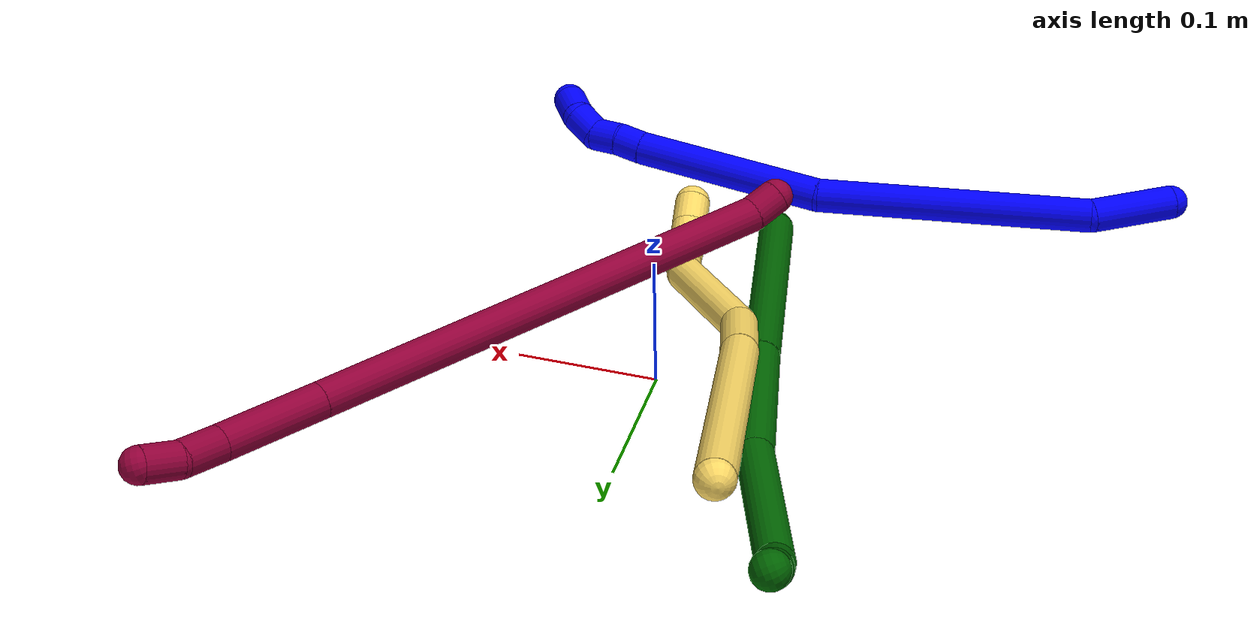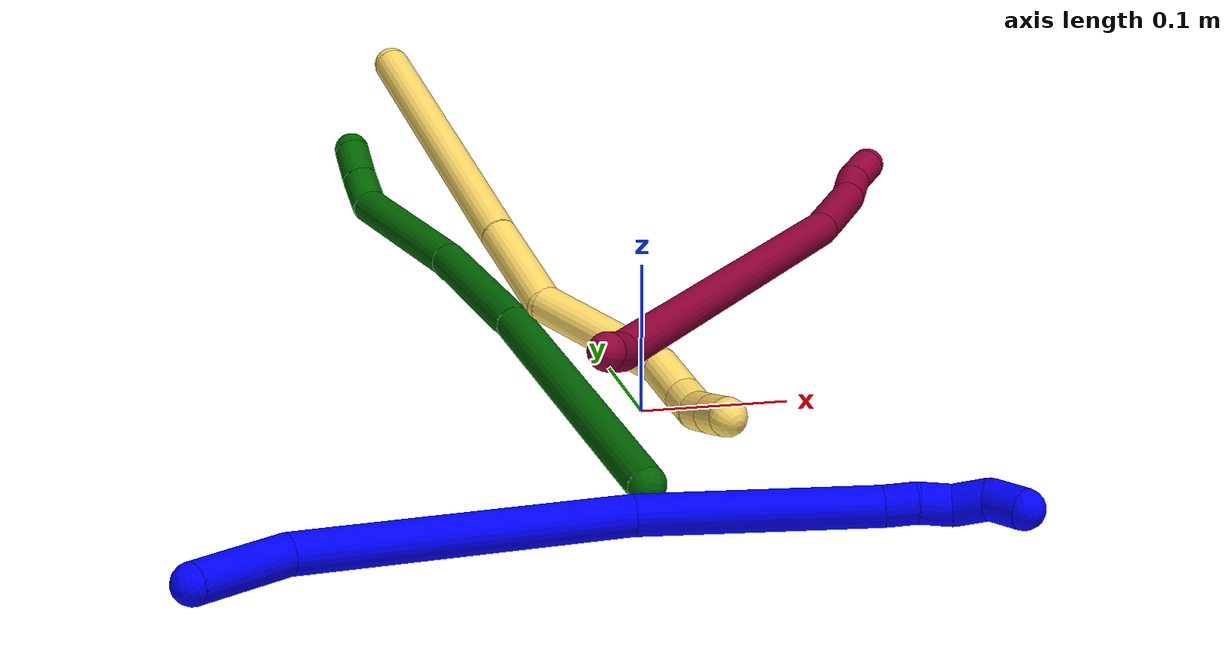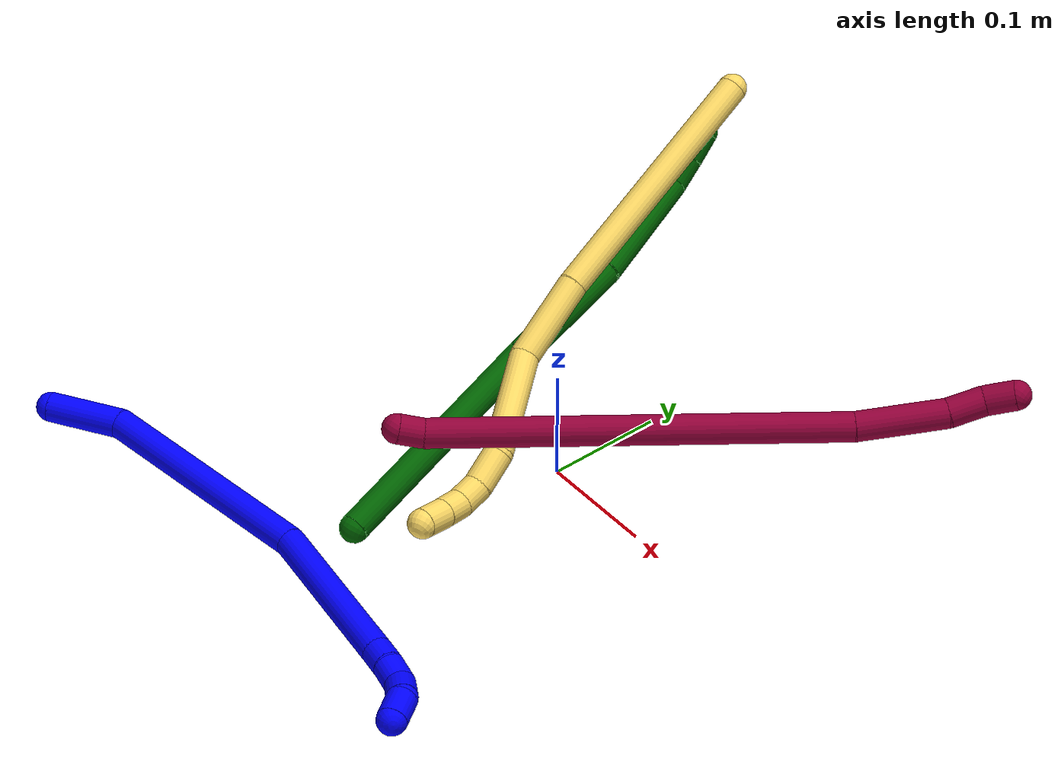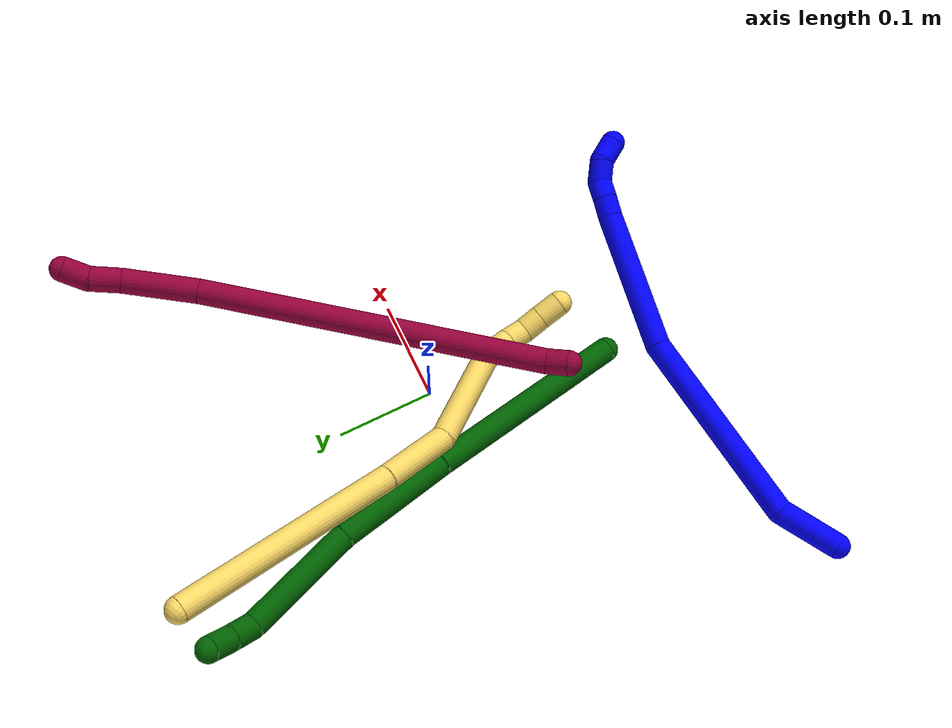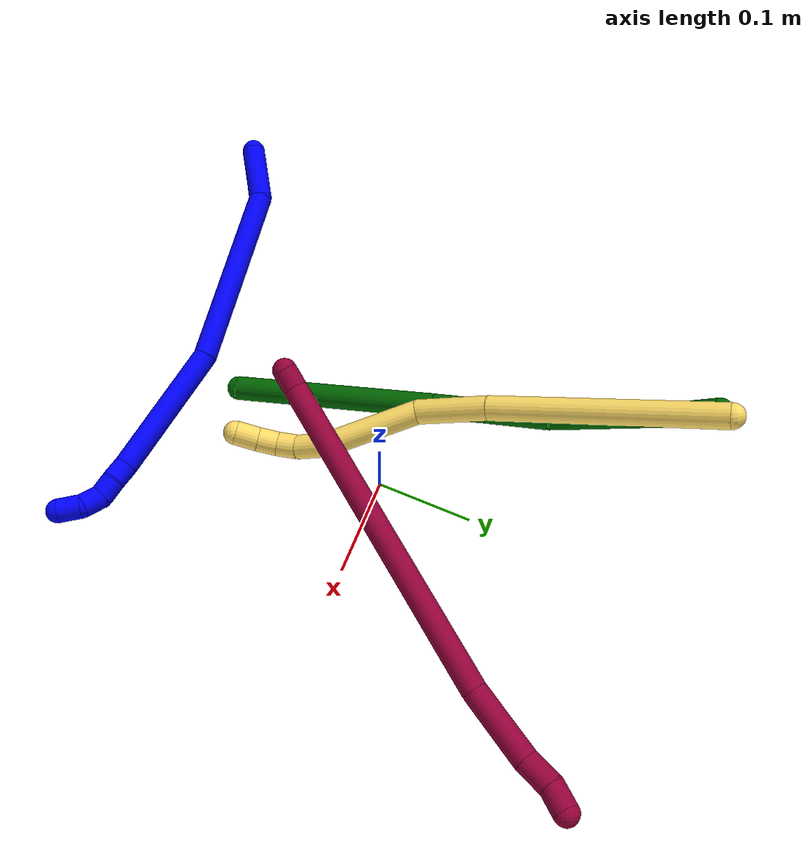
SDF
<sdf version="1.7">
 <world name="default">
  <model name="photoneo_s_sensor">
   <static>1</static>
   <pose>0 0 2 1.57079 1.57079 3.14159</pose>
   <link name="link">
    <inertial><mass>0.1</mass></inertial>
    <sensor name="sensor" type="depth">
     <update_rate>30</update_rate>
     <camera>
      <horizontal_fov>1.22</horizontal_fov>
      <image><width>1920</width><height>1200</height><format>B8G8R8</format></image>
      <clip><near>0.1</near><far>4</far></clip>
      <depth_camera><output>points</output></depth_camera>
     </camera>
     <plugin name="camera_plugin" filename="libgazebo_ros_depth_camera.so">
      <baseline>0.2</baseline>
      <alwaysOn>1</alwaysOn>
      <updateRate>0.0</updateRate>
      <cameraName>camera_ir</cameraName>
      <imageTopicName>/camera/color/image_raw</imageTopicName>
      <cameraInfoTopicName>/camera/color/camera_info</cameraInfoTopicName>
      <depthImageTopicName>/camera/depth/image_raw</depthImageTopicName>
      <depthImageCameraInfoTopicName>/camera/depth/camera_info</depthImageCameraInfoTopicName>
      <pointCloudTopicName>/camera/depth/points</pointCloudTopicName>
      <frameName>fr_optical</frameName>
      <pointCloudCutoff>0.1</pointCloudCutoff>
      <pointCloudCutoffMax>2.0</pointCloudCutoffMax>
      <distortionK1>0</distortionK1>
      <distortionK2>0</distortionK2>
      <distortionK3>0</distortionK3>
      <distortionT1>0</distortionT1>
      <distortionT2>0</distortionT2>
      <CxPrime>0</CxPrime>
      <Cx>0</Cx>
      <Cy>0</Cy>
      <focalLength>0</focalLength>
      <hackBaseline>0</hackBaseline>
     </plugin>
    </sensor>
   </link>
  </model>
  <model name="bin">
   <static>1</static>
   <link name="bottom">
    <collision name="collision-bottom">
     <pose>0 0 -0.01 0 -0 0</pose>
     <geometry><box><size>0.8 0.6 0.02</size></box></geometry>
     <surface>
      <friction><ode><mu>100</mu><mu2>100</mu2></ode></friction>
      <contact><collide_bitmask>65535</collide_bitmask></contact>
     </surface>
    </collision>
   </link>
   <link name="west_wall">
    <collision name="collision-west_wall">
     <pose>-0.41 0 0.1 0 -0 0</pose>
     <geometry><box><size>0.02 0.6 0.2</size></box></geometry>
     <surface>
      <friction><ode><mu>100</mu><mu2>100</mu2></ode></friction>
      <contact><collide_bitmask>65535</collide_bitmask></contact>
     </surface>
    </collision>
   </link>
   <link name="east_wall">
    <collision name="collision-east_wall">
     <pose>0.41 0 0.1 0 -0 0</pose>
     <geometry><box><size>0.02 0.6 0.2</size></box></geometry>
     <surface>
      <friction><ode><mu>100</mu><mu2>100</mu2></ode></friction>
      <contact><collide_bitmask>65535</collide_bitmask></contact>
     </surface>
    </collision>
   </link>
   <link name="south_wall">
    <collision name="collision-south_wall">
     <pose>0 -0.31 0.1 0 -0 0</pose>
     <geometry><box><size>0.8 0.02 0.2</size></box></geometry>
     <surface>
      <friction><ode><mu>100</mu><mu2>100</mu2></ode></friction>
      <contact><collide_bitmask>65535</collide_bitmask></contact>
     </surface>
    </collision>
   </link>
   <link name="north_wall">
    <collision name="collision-north_wall">
     <pose>0 0.31 0.1 0 -0 0</pose>
     <geometry><box><size>0.8 0.02 0.2</size></box></geometry>
     <surface>
      <friction><ode><mu>100</mu><mu2>100</mu2></ode></friction>
      <contact><collide_bitmask>65535</collide_bitmask></contact>
     </surface>
    </collision>
   </link>
  </model>
  <model name="1">
   <static>0</static>
   <link name="1">
    <collision name="collision-cylinder-e_1_1_4">
     <pose>0.028662 -0.004553 -0.013015 2.80507 1.1224 2.61375</pose>
     <geometry><cylinder><radius>0.0125</radius><length>0.063613</length></cylinder></geometry>
     <surface>
      <friction><ode><mu>1.16</mu><mu2>1.16</mu2><slip1>0</slip1><slip2>0</slip2></ode></friction>
      <contact><ode><kp>1e+06</kp><kd>1</kd><max_vel>0</max_vel><min_depth>0.001</min_depth></ode></contact>
     </surface>
    </collision>
    <visual name="visual-cylinder-e_1_1_4">
     <pose>0.028662 -0.004553 -0.013015 2.80507 1.1224 2.61375</pose>
     <geometry><cylinder><radius>0.0125</radius><length>0.063613</length></cylinder></geometry>
     <material><ambient>0 0 1 1</ambient></material>
    </visual>
    <collision name="collision-cylinder-e_2_4_5">
     <pose>0.129143 -0.000375 -0.097504 -3.02004 0.784103 -2.84933</pose>
     <geometry><cylinder><radius>0.0125</radius><length>0.203397</length></cylinder></geometry>
     <surface>
      <friction><ode><mu>1.16</mu><mu2>1.16</mu2><slip1>0</slip1><slip2>0</slip2></ode></friction>
      <contact><ode><kp>1e+06</kp><kd>1</kd><max_vel>0</max_vel><min_depth>0.001</min_depth></ode></contact>
     </surface>
    </collision>
    <visual name="visual-cylinder-e_2_4_5">
     <pose>0.129143 -0.000375 -0.097504 -3.02004 0.784103 -2.84933</pose>
     <geometry><cylinder><radius>0.0125</radius><length>0.203397</length></cylinder></geometry>
     <material><ambient>0 0 1 1</ambient></material>
    </visual>
    <collision name="collision-cylinder-e_3_5_6">
     <pose>0.237179 0.023201 -0.230351 -2.90427 0.520765 -2.30009</pose>
     <geometry><cylinder><radius>0.0125</radius><length>0.145585</length></cylinder></geometry>
     <surface>
      <friction><ode><mu>1.16</mu><mu2>1.16</mu2><slip1>0</slip1><slip2>0</slip2></ode></friction>
      <contact><ode><kp>1e+06</kp><kd>1</kd><max_vel>0</max_vel><min_depth>0.001</min_depth></ode></contact>
     </surface>
    </collision>
    <visual name="visual-cylinder-e_3_5_6">
     <pose>0.237179 0.023201 -0.230351 -2.90427 0.520765 -2.30009</pose>
     <geometry><cylinder><radius>0.0125</radius><length>0.145585</length></cylinder></geometry>
     <material><ambient>0 0 1 1</ambient></material>
    </visual>
    <collision name="collision-cylinder-e_4_6_7">
     <pose>0.277712 0.039629 -0.300668 -2.96639 0.44361 -2.39884</pose>
     <geometry><cylinder><radius>0.0125</radius><length>0.020112</length></cylinder></geometry>
     <surface>
      <friction><ode><mu>1.16</mu><mu2>1.16</mu2><slip1>0</slip1><slip2>0</slip2></ode></friction>
      <contact><ode><kp>1e+06</kp><kd>1</kd><max_vel>0</max_vel><min_depth>0.001</min_depth></ode></contact>
     </surface>
    </collision>
    <visual name="visual-cylinder-e_4_6_7">
     <pose>0.277712 0.039629 -0.300668 -2.96639 0.44361 -2.39884</pose>
     <geometry><cylinder><radius>0.0125</radius><length>0.020112</length></cylinder></geometry>
     <material><ambient>0 0 1 1</ambient></material>
    </visual>
    <collision name="collision-cylinder-e_5_7_8">
     <pose>0.287066 0.044408 -0.318202 -2.7854 0.502524 -1.91846</pose>
     <geometry><cylinder><radius>0.0125</radius><length>0.020918</length></cylinder></geometry>
     <surface>
      <friction><ode><mu>1.16</mu><mu2>1.16</mu2><slip1>0</slip1><slip2>0</slip2></ode></friction>
      <contact><ode><kp>1e+06</kp><kd>1</kd><max_vel>0</max_vel><min_depth>0.001</min_depth></ode></contact>
     </surface>
    </collision>
    <visual name="visual-cylinder-e_5_7_8">
     <pose>0.287066 0.044408 -0.318202 -2.7854 0.502524 -1.91846</pose>
     <geometry><cylinder><radius>0.0125</radius><length>0.020918</length></cylinder></geometry>
     <material><ambient>0 0 1 1</ambient></material>
    </visual>
    <collision name="collision-cylinder-e_6_8_9">
     <pose>0.292565 0.04904 -0.337888 -3.01295 0.041285 -0.620359</pose>
     <geometry><cylinder><radius>0.0125</radius><length>0.022394</length></cylinder></geometry>
     <surface>
      <friction><ode><mu>1.16</mu><mu2>1.16</mu2><slip1>0</slip1><slip2>0</slip2></ode></friction>
      <contact><ode><kp>1e+06</kp><kd>1</kd><max_vel>0</max_vel><min_depth>0.001</min_depth></ode></contact>
     </surface>
    </collision>
    <visual name="visual-cylinder-e_6_8_9">
     <pose>0.292565 0.04904 -0.337888 -3.01295 0.041285 -0.620359</pose>
     <geometry><cylinder><radius>0.0125</radius><length>0.022394</length></cylinder></geometry>
     <material><ambient>0 0 1 1</ambient></material>
    </visual>
    <collision name="collision-cylinder-e_7_9_2">
     <pose>0.290002 0.056523 -0.358885 -2.59327 -0.255106 0.855684</pose>
     <geometry><cylinder><radius>0.0125</radius><length>0.023981</length></cylinder></geometry>
     <surface>
      <friction><ode><mu>1.16</mu><mu2>1.16</mu2><slip1>0</slip1><slip2>0</slip2></ode></friction>
      <contact><ode><kp>1e+06</kp><kd>1</kd><max_vel>0</max_vel><min_depth>0.001</min_depth></ode></contact>
     </surface>
    </collision>
    <visual name="visual-cylinder-e_7_9_2">
     <pose>0.290002 0.056523 -0.358885 -2.59327 -0.255106 0.855684</pose>
     <geometry><cylinder><radius>0.0125</radius><length>0.023981</length></cylinder></geometry>
     <material><ambient>0 0 1 1</ambient></material>
    </visual>
    <collision name="collision-sphere-2">
     <pose>0.286976 0.062571 -0.368786 0 -0 0</pose>
     <geometry><sphere><radius>0.0125</radius></sphere></geometry>
     <surface>
      <friction><ode><mu>1.16</mu><mu2>1.16</mu2><slip1>0</slip1><slip2>0</slip2></ode></friction>
      <contact><ode><kp>1e+06</kp><kd>1</kd><max_vel>0</max_vel><min_depth>0.001</min_depth></ode></contact>
     </surface>
    </collision>
    <visual name="visual-sphere-2">
     <pose>0.286976 0.062571 -0.368786 0 -0 0</pose>
     <geometry><sphere><radius>0.0125</radius></sphere></geometry>
     <material><ambient>0 0 1 1</ambient></material>
    </visual>
    <collision name="collision-sphere-9">
     <pose>0.293027 0.050475 -0.348983 0 -0 0</pose>
     <geometry><sphere><radius>0.0125</radius></sphere></geometry>
     <surface>
      <friction><ode><mu>1.16</mu><mu2>1.16</mu2><slip1>0</slip1><slip2>0</slip2></ode></friction>
      <contact><ode><kp>1e+06</kp><kd>1</kd><max_vel>0</max_vel><min_depth>0.001</min_depth></ode></contact>
     </surface>
    </collision>
    <visual name="visual-sphere-9">
     <pose>0.293027 0.050475 -0.348983 0 -0 0</pose>
     <geometry><sphere><radius>0.0125</radius></sphere></geometry>
     <material><ambient>0 0 1 1</ambient></material>
    </visual>
    <collision name="collision-sphere-4">
     <pose>0.057324 -0.009106 -0.026031 0 -0 0</pose>
     <geometry><sphere><radius>0.0125</radius></sphere></geometry>
     <surface>
      <friction><ode><mu>1.16</mu><mu2>1.16</mu2><slip1>0</slip1><slip2>0</slip2></ode></friction>
      <contact><ode><kp>1e+06</kp><kd>1</kd><max_vel>0</max_vel><min_depth>0.001</min_depth></ode></contact>
     </surface>
    </collision>
    <visual name="visual-sphere-4">
     <pose>0.057324 -0.009106 -0.026031 0 -0 0</pose>
     <geometry><sphere><radius>0.0125</radius></sphere></geometry>
     <material><ambient>0 0 1 1</ambient></material>
    </visual>
    <collision name="collision-sphere-1">
     <geometry><sphere><radius>0.0125</radius></sphere></geometry>
     <surface>
      <friction><ode><mu>1.16</mu><mu2>1.16</mu2><slip1>0</slip1><slip2>0</slip2></ode></friction>
      <contact><ode><kp>1e+06</kp><kd>1</kd><max_vel>0</max_vel><min_depth>0.001</min_depth></ode></contact>
     </surface>
    </collision>
    <visual name="visual-sphere-1">
     <geometry><sphere><radius>0.0125</radius></sphere></geometry>
     <material><ambient>0 0 1 1</ambient></material>
    </visual>
    <collision name="collision-sphere-8">
     <pose>0.292103 0.047604 -0.326793 0 -0 0</pose>
     <geometry><sphere><radius>0.0125</radius></sphere></geometry>
     <surface>
      <friction><ode><mu>1.16</mu><mu2>1.16</mu2><slip1>0</slip1><slip2>0</slip2></ode></friction>
      <contact><ode><kp>1e+06</kp><kd>1</kd><max_vel>0</max_vel><min_depth>0.001</min_depth></ode></contact>
     </surface>
    </collision>
    <visual name="visual-sphere-8">
     <pose>0.292103 0.047604 -0.326793 0 -0 0</pose>
     <geometry><sphere><radius>0.0125</radius></sphere></geometry>
     <material><ambient>0 0 1 1</ambient></material>
    </visual>
    <collision name="collision-sphere-5">
     <pose>0.200961 0.008356 -0.168978 0 -0 0</pose>
     <geometry><sphere><radius>0.0125</radius></sphere></geometry>
     <surface>
      <friction><ode><mu>1.16</mu><mu2>1.16</mu2><slip1>0</slip1><slip2>0</slip2></ode></friction>
      <contact><ode><kp>1e+06</kp><kd>1</kd><max_vel>0</max_vel><min_depth>0.001</min_depth></ode></contact>
     </surface>
    </collision>
    <visual name="visual-sphere-5">
     <pose>0.200961 0.008356 -0.168978 0 -0 0</pose>
     <geometry><sphere><radius>0.0125</radius></sphere></geometry>
     <material><ambient>0 0 1 1</ambient></material>
    </visual>
    <collision name="collision-sphere-6">
     <pose>0.273396 0.038046 -0.291724 0 -0 0</pose>
     <geometry><sphere><radius>0.0125</radius></sphere></geometry>
     <surface>
      <friction><ode><mu>1.16</mu><mu2>1.16</mu2><slip1>0</slip1><slip2>0</slip2></ode></friction>
      <contact><ode><kp>1e+06</kp><kd>1</kd><max_vel>0</max_vel><min_depth>0.001</min_depth></ode></contact>
     </surface>
    </collision>
    <visual name="visual-sphere-6">
     <pose>0.273396 0.038046 -0.291724 0 -0 0</pose>
     <geometry><sphere><radius>0.0125</radius></sphere></geometry>
     <material><ambient>0 0 1 1</ambient></material>
    </visual>
    <collision name="collision-sphere-7">
     <pose>0.282028 0.041212 -0.309611 0 -0 0</pose>
     <geometry><sphere><radius>0.0125</radius></sphere></geometry>
     <surface>
      <friction><ode><mu>1.16</mu><mu2>1.16</mu2><slip1>0</slip1><slip2>0</slip2></ode></friction>
      <contact><ode><kp>1e+06</kp><kd>1</kd><max_vel>0</max_vel><min_depth>0.001</min_depth></ode></contact>
     </surface>
    </collision>
    <visual name="visual-sphere-7">
     <pose>0.282028 0.041212 -0.309611 0 -0 0</pose>
     <geometry><sphere><radius>0.0125</radius></sphere></geometry>
     <material><ambient>0 0 1 1</ambient></material>
    </visual>
    <inertial>
     <pose>0.175433 0.014383 -0.166144 0 -0 0</pose>
     <mass>0.5</mass>
     <inertia>
      <ixx>-0.000929</ixx>
      <ixy>0</ixy>
      <ixz>0</ixz>
      <iyy>0.000601</iyy>
      <iyz>0</iyz>
      <izz>-0.000796</izz>
     </inertia>
    </inertial>
   </link>
   <pose>-0.313235 -0.288502 0.014056 -2.0195 0.328402 0.867038</pose>
  </model>
  <model name="5">
   <static>0</static>
   <link name="5">
    <collision name="collision-cylinder-e_1_1_4">
     <pose>-0.016309 -0.020682 -0.110614 2.95675 -0.143928 -1.3221</pose>
     <geometry><cylinder><radius>0.0125</radius><length>0.227413</length></cylinder></geometry>
     <surface>
      <friction><ode><mu>1.16</mu><mu2>1.16</mu2><slip1>0</slip1><slip2>0</slip2></ode></friction>
      <contact><ode><kp>1e+06</kp><kd>1</kd><max_vel>0</max_vel><min_depth>0.001</min_depth></ode></contact>
     </surface>
    </collision>
    <visual name="visual-cylinder-e_1_1_4">
     <pose>-0.016309 -0.020682 -0.110614 2.95675 -0.143928 -1.3221</pose>
     <geometry><cylinder><radius>0.0125</radius><length>0.227413</length></cylinder></geometry>
     <material><ambient>1 0.858824 0.4 1</ambient></material>
    </visual>
    <collision name="collision-cylinder-e_2_4_5">
     <pose>-0.039858 -0.045415 -0.257905 3.03159 -0.193736 -2.11059</pose>
     <geometry><cylinder><radius>0.0125</radius><length>0.075207</length></cylinder></geometry>
     <surface>
      <friction><ode><mu>1.16</mu><mu2>1.16</mu2><slip1>0</slip1><slip2>0</slip2></ode></friction>
      <contact><ode><kp>1e+06</kp><kd>1</kd><max_vel>0</max_vel><min_depth>0.001</min_depth></ode></contact>
     </surface>
    </collision>
    <visual name="visual-cylinder-e_2_4_5">
     <pose>-0.039858 -0.045415 -0.257905 3.03159 -0.193736 -2.11059</pose>
     <geometry><cylinder><radius>0.0125</radius><length>0.075207</length></cylinder></geometry>
     <material><ambient>1 0.858824 0.4 1</ambient></material>
    </visual>
    <collision name="collision-cylinder-e_3_5_6">
     <pose>-0.044568 -0.03789 -0.342473 -2.90444 0.051287 -0.424115</pose>
     <geometry><cylinder><radius>0.0125</radius><length>0.09867</length></cylinder></geometry>
     <surface>
      <friction><ode><mu>1.16</mu><mu2>1.16</mu2><slip1>0</slip1><slip2>0</slip2></ode></friction>
      <contact><ode><kp>1e+06</kp><kd>1</kd><max_vel>0</max_vel><min_depth>0.001</min_depth></ode></contact>
     </surface>
    </collision>
    <visual name="visual-cylinder-e_3_5_6">
     <pose>-0.044568 -0.03789 -0.342473 -2.90444 0.051287 -0.424115</pose>
     <geometry><cylinder><radius>0.0125</radius><length>0.09867</length></cylinder></geometry>
     <material><ambient>1 0.858824 0.4 1</ambient></material>
    </visual>
    <collision name="collision-cylinder-e_4_6_7">
     <pose>-0.04437 -0.027417 -0.406237 3.07225 -0.145469 -2.25299</pose>
     <geometry><cylinder><radius>0.0125</radius><length>0.032161</length></cylinder></geometry>
     <surface>
      <friction><ode><mu>1.16</mu><mu2>1.16</mu2><slip1>0</slip1><slip2>0</slip2></ode></friction>
      <contact><ode><kp>1e+06</kp><kd>1</kd><max_vel>0</max_vel><min_depth>0.001</min_depth></ode></contact>
     </surface>
    </collision>
    <visual name="visual-cylinder-e_4_6_7">
     <pose>-0.04437 -0.027417 -0.406237 3.07225 -0.145469 -2.25299</pose>
     <geometry><cylinder><radius>0.0125</radius><length>0.032161</length></cylinder></geometry>
     <material><ambient>1 0.858824 0.4 1</ambient></material>
    </visual>
    <collision name="collision-cylinder-e_5_7_8">
     <pose>-0.04644 -0.031259 -0.432468 2.88311 0.024374 0.187005</pose>
     <geometry><cylinder><radius>0.0125</radius><length>0.021436</length></cylinder></geometry>
     <surface>
      <friction><ode><mu>1.16</mu><mu2>1.16</mu2><slip1>0</slip1><slip2>0</slip2></ode></friction>
      <contact><ode><kp>1e+06</kp><kd>1</kd><max_vel>0</max_vel><min_depth>0.001</min_depth></ode></contact>
     </surface>
    </collision>
    <visual name="visual-cylinder-e_5_7_8">
     <pose>-0.04644 -0.031259 -0.432468 2.88311 0.024374 0.187005</pose>
     <geometry><cylinder><radius>0.0125</radius><length>0.021436</length></cylinder></geometry>
     <material><ambient>1 0.858824 0.4 1</ambient></material>
    </visual>
    <collision name="collision-cylinder-e_6_8_9">
     <pose>-0.042062 -0.037006 -0.45232 2.83468 0.392024 1.81804</pose>
     <geometry><cylinder><radius>0.0125</radius><length>0.021552</length></cylinder></geometry>
     <surface>
      <friction><ode><mu>1.16</mu><mu2>1.16</mu2><slip1>0</slip1><slip2>0</slip2></ode></friction>
      <contact><ode><kp>1e+06</kp><kd>1</kd><max_vel>0</max_vel><min_depth>0.001</min_depth></ode></contact>
     </surface>
    </collision>
    <visual name="visual-cylinder-e_6_8_9">
     <pose>-0.042062 -0.037006 -0.45232 2.83468 0.392024 1.81804</pose>
     <geometry><cylinder><radius>0.0125</radius><length>0.021552</length></cylinder></geometry>
     <material><ambient>1 0.858824 0.4 1</ambient></material>
    </visual>
    <collision name="collision-cylinder-e_7_9_2">
     <pose>-0.033198 -0.043781 -0.471916 2.78471 0.41466 1.72403</pose>
     <geometry><cylinder><radius>0.0125</radius><length>0.023561</length></cylinder></geometry>
     <surface>
      <friction><ode><mu>1.16</mu><mu2>1.16</mu2><slip1>0</slip1><slip2>0</slip2></ode></friction>
      <contact><ode><kp>1e+06</kp><kd>1</kd><max_vel>0</max_vel><min_depth>0.001</min_depth></ode></contact>
     </surface>
    </collision>
    <visual name="visual-cylinder-e_7_9_2">
     <pose>-0.033198 -0.043781 -0.471916 2.78471 0.41466 1.72403</pose>
     <geometry><cylinder><radius>0.0125</radius><length>0.023561</length></cylinder></geometry>
     <material><ambient>1 0.858824 0.4 1</ambient></material>
    </visual>
    <collision name="collision-sphere-2">
     <pose>-0.028452 -0.047548 -0.482018 0 -0 0</pose>
     <geometry><sphere><radius>0.0125</radius></sphere></geometry>
     <surface>
      <friction><ode><mu>1.16</mu><mu2>1.16</mu2><slip1>0</slip1><slip2>0</slip2></ode></friction>
      <contact><ode><kp>1e+06</kp><kd>1</kd><max_vel>0</max_vel><min_depth>0.001</min_depth></ode></contact>
     </surface>
    </collision>
    <visual name="visual-sphere-2">
     <pose>-0.028452 -0.047548 -0.482018 0 -0 0</pose>
     <geometry><sphere><radius>0.0125</radius></sphere></geometry>
     <material><ambient>1 0.858824 0.4 1</ambient></material>
    </visual>
    <collision name="collision-sphere-9">
     <pose>-0.037944 -0.040015 -0.461813 0 -0 0</pose>
     <geometry><sphere><radius>0.0125</radius></sphere></geometry>
     <surface>
      <friction><ode><mu>1.16</mu><mu2>1.16</mu2><slip1>0</slip1><slip2>0</slip2></ode></friction>
      <contact><ode><kp>1e+06</kp><kd>1</kd><max_vel>0</max_vel><min_depth>0.001</min_depth></ode></contact>
     </surface>
    </collision>
    <visual name="visual-sphere-9">
     <pose>-0.037944 -0.040015 -0.461813 0 -0 0</pose>
     <geometry><sphere><radius>0.0125</radius></sphere></geometry>
     <material><ambient>1 0.858824 0.4 1</ambient></material>
    </visual>
    <collision name="collision-sphere-4">
     <pose>-0.032618 -0.041364 -0.221228 0 -0 0</pose>
     <geometry><sphere><radius>0.0125</radius></sphere></geometry>
     <surface>
      <friction><ode><mu>1.16</mu><mu2>1.16</mu2><slip1>0</slip1><slip2>0</slip2></ode></friction>
      <contact><ode><kp>1e+06</kp><kd>1</kd><max_vel>0</max_vel><min_depth>0.001</min_depth></ode></contact>
     </surface>
    </collision>
    <visual name="visual-sphere-4">
     <pose>-0.032618 -0.041364 -0.221228 0 -0 0</pose>
     <geometry><sphere><radius>0.0125</radius></sphere></geometry>
     <material><ambient>1 0.858824 0.4 1</ambient></material>
    </visual>
    <collision name="collision-sphere-1">
     <geometry><sphere><radius>0.0125</radius></sphere></geometry>
     <surface>
      <friction><ode><mu>1.16</mu><mu2>1.16</mu2><slip1>0</slip1><slip2>0</slip2></ode></friction>
      <contact><ode><kp>1e+06</kp><kd>1</kd><max_vel>0</max_vel><min_depth>0.001</min_depth></ode></contact>
     </surface>
    </collision>
    <visual name="visual-sphere-1">
     <geometry><sphere><radius>0.0125</radius></sphere></geometry>
     <material><ambient>1 0.858824 0.4 1</ambient></material>
    </visual>
    <collision name="collision-sphere-8">
     <pose>-0.046179 -0.033997 -0.442826 0 -0 0</pose>
     <geometry><sphere><radius>0.0125</radius></sphere></geometry>
     <surface>
      <friction><ode><mu>1.16</mu><mu2>1.16</mu2><slip1>0</slip1><slip2>0</slip2></ode></friction>
      <contact><ode><kp>1e+06</kp><kd>1</kd><max_vel>0</max_vel><min_depth>0.001</min_depth></ode></contact>
     </surface>
    </collision>
    <visual name="visual-sphere-8">
     <pose>-0.046179 -0.033997 -0.442826 0 -0 0</pose>
     <geometry><sphere><radius>0.0125</radius></sphere></geometry>
     <material><ambient>1 0.858824 0.4 1</ambient></material>
    </visual>
    <collision name="collision-sphere-5">
     <pose>-0.047098 -0.049466 -0.294582 0 -0 0</pose>
     <geometry><sphere><radius>0.0125</radius></sphere></geometry>
     <surface>
      <friction><ode><mu>1.16</mu><mu2>1.16</mu2><slip1>0</slip1><slip2>0</slip2></ode></friction>
      <contact><ode><kp>1e+06</kp><kd>1</kd><max_vel>0</max_vel><min_depth>0.001</min_depth></ode></contact>
     </surface>
    </collision>
    <visual name="visual-sphere-5">
     <pose>-0.047098 -0.049466 -0.294582 0 -0 0</pose>
     <geometry><sphere><radius>0.0125</radius></sphere></geometry>
     <material><ambient>1 0.858824 0.4 1</ambient></material>
    </visual>
    <collision name="collision-sphere-6">
     <pose>-0.042039 -0.026315 -0.390364 0 -0 0</pose>
     <geometry><sphere><radius>0.0125</radius></sphere></geometry>
     <surface>
      <friction><ode><mu>1.16</mu><mu2>1.16</mu2><slip1>0</slip1><slip2>0</slip2></ode></friction>
      <contact><ode><kp>1e+06</kp><kd>1</kd><max_vel>0</max_vel><min_depth>0.001</min_depth></ode></contact>
     </surface>
    </collision>
    <visual name="visual-sphere-6">
     <pose>-0.042039 -0.026315 -0.390364 0 -0 0</pose>
     <geometry><sphere><radius>0.0125</radius></sphere></geometry>
     <material><ambient>1 0.858824 0.4 1</ambient></material>
    </visual>
    <collision name="collision-sphere-7">
     <pose>-0.046701 -0.02852 -0.422109 0 -0 0</pose>
     <geometry><sphere><radius>0.0125</radius></sphere></geometry>
     <surface>
      <friction><ode><mu>1.16</mu><mu2>1.16</mu2><slip1>0</slip1><slip2>0</slip2></ode></friction>
      <contact><ode><kp>1e+06</kp><kd>1</kd><max_vel>0</max_vel><min_depth>0.001</min_depth></ode></contact>
     </surface>
    </collision>
    <visual name="visual-sphere-7">
     <pose>-0.046701 -0.02852 -0.422109 0 -0 0</pose>
     <geometry><sphere><radius>0.0125</radius></sphere></geometry>
     <material><ambient>1 0.858824 0.4 1</ambient></material>
    </visual>
    <inertial>
     <pose>-0.03043 -0.030477 -0.243091 0 -0 0</pose>
     <mass>0.5</mass>
     <inertia>
      <ixx>-0.000721</ixx>
      <ixy>0</ixy>
      <ixz>0</ixz>
      <iyy>-0.001284</iyy>
      <iyz>0</iyz>
      <izz>0.000273</izz>
     </inertia>
    </inertial>
   </link>
   <pose>-0.123784 0.288449 0.187531 -0.567479 -1.25479 -0.5563</pose>
  </model>
  <model name="6">
   <static>0</static>
   <link name="6">
    <collision name="collision-cylinder-e_1_1_4">
     <pose>0.005685 0.104608 0.019745 -1.38424 0.053349 -0.044224</pose>
     <geometry><cylinder><radius>0.0125</radius><length>0.213214</length></cylinder></geometry>
     <surface>
      <friction><ode><mu>1.16</mu><mu2>1.16</mu2><slip1>0</slip1><slip2>0</slip2></ode></friction>
      <contact><ode><kp>1e+06</kp><kd>1</kd><max_vel>0</max_vel><min_depth>0.001</min_depth></ode></contact>
     </surface>
    </collision>
    <visual name="visual-cylinder-e_1_1_4">
     <pose>0.005685 0.104608 0.019745 -1.38424 0.053349 -0.044224</pose>
     <geometry><cylinder><radius>0.0125</radius><length>0.213214</length></cylinder></geometry>
     <material><ambient>0 0.392157 0.003922 1</ambient></material>
    </visual>
    <collision name="collision-cylinder-e_2_4_5">
     <pose>0.019139 0.266063 0.051054 -1.37012 0.133138 -0.108836</pose>
     <geometry><cylinder><radius>0.0125</radius><length>0.117058</length></cylinder></geometry>
     <surface>
      <friction><ode><mu>1.16</mu><mu2>1.16</mu2><slip1>0</slip1><slip2>0</slip2></ode></friction>
      <contact><ode><kp>1e+06</kp><kd>1</kd><max_vel>0</max_vel><min_depth>0.001</min_depth></ode></contact>
     </surface>
    </collision>
    <visual name="visual-cylinder-e_2_4_5">
     <pose>0.019139 0.266063 0.051054 -1.37012 0.133138 -0.108836</pose>
     <geometry><cylinder><radius>0.0125</radius><length>0.117058</length></cylinder></geometry>
     <material><ambient>0 0.392157 0.003922 1</ambient></material>
    </visual>
    <collision name="collision-cylinder-e_3_5_6">
     <pose>0.03751 0.380075 0.066536 -1.50236 0.182951 -0.170901</pose>
     <geometry><cylinder><radius>0.0125</radius><length>0.116545</length></cylinder></geometry>
     <surface>
      <friction><ode><mu>1.16</mu><mu2>1.16</mu2><slip1>0</slip1><slip2>0</slip2></ode></friction>
      <contact><ode><kp>1e+06</kp><kd>1</kd><max_vel>0</max_vel><min_depth>0.001</min_depth></ode></contact>
     </surface>
    </collision>
    <visual name="visual-cylinder-e_3_5_6">
     <pose>0.03751 0.380075 0.066536 -1.50236 0.182951 -0.170901</pose>
     <geometry><cylinder><radius>0.0125</radius><length>0.116545</length></cylinder></geometry>
     <material><ambient>0 0.392157 0.003922 1</ambient></material>
    </visual>
    <collision name="collision-cylinder-e_4_6_7">
     <pose>0.04374 0.449984 0.070808 -1.54311 -0.330319 0.321454</pose>
     <geometry><cylinder><radius>0.0125</radius><length>0.026954</length></cylinder></geometry>
     <surface>
      <friction><ode><mu>1.16</mu><mu2>1.16</mu2><slip1>0</slip1><slip2>0</slip2></ode></friction>
      <contact><ode><kp>1e+06</kp><kd>1</kd><max_vel>0</max_vel><min_depth>0.001</min_depth></ode></contact>
     </surface>
    </collision>
    <visual name="visual-cylinder-e_4_6_7">
     <pose>0.04374 0.449984 0.070808 -1.54311 -0.330319 0.321454</pose>
     <geometry><cylinder><radius>0.0125</radius><length>0.026954</length></cylinder></geometry>
     <material><ambient>0 0.392157 0.003922 1</ambient></material>
    </visual>
    <collision name="collision-cylinder-e_5_7_2">
     <pose>0.033887 0.474641 0.071297 -1.55932 -0.43124 0.426467</pose>
     <geometry><cylinder><radius>0.0125</radius><length>0.02623</length></cylinder></geometry>
     <surface>
      <friction><ode><mu>1.16</mu><mu2>1.16</mu2><slip1>0</slip1><slip2>0</slip2></ode></friction>
      <contact><ode><kp>1e+06</kp><kd>1</kd><max_vel>0</max_vel><min_depth>0.001</min_depth></ode></contact>
     </surface>
    </collision>
    <visual name="visual-cylinder-e_5_7_2">
     <pose>0.033887 0.474641 0.071297 -1.55932 -0.43124 0.426467</pose>
     <geometry><cylinder><radius>0.0125</radius><length>0.02623</length></cylinder></geometry>
     <material><ambient>0 0.392157 0.003922 1</ambient></material>
    </visual>
    <collision name="collision-sphere-2">
     <pose>0.028405 0.486555 0.071434 0 -0 0</pose>
     <geometry><sphere><radius>0.0125</radius></sphere></geometry>
     <surface>
      <friction><ode><mu>1.16</mu><mu2>1.16</mu2><slip1>0</slip1><slip2>0</slip2></ode></friction>
      <contact><ode><kp>1e+06</kp><kd>1</kd><max_vel>0</max_vel><min_depth>0.001</min_depth></ode></contact>
     </surface>
    </collision>
    <visual name="visual-sphere-2">
     <pose>0.028405 0.486555 0.071434 0 -0 0</pose>
     <geometry><sphere><radius>0.0125</radius></sphere></geometry>
     <material><ambient>0 0.392157 0.003922 1</ambient></material>
    </visual>
    <collision name="collision-sphere-7">
     <pose>0.039369 0.462728 0.071161 0 -0 0</pose>
     <geometry><sphere><radius>0.0125</radius></sphere></geometry>
     <surface>
      <friction><ode><mu>1.16</mu><mu2>1.16</mu2><slip1>0</slip1><slip2>0</slip2></ode></friction>
      <contact><ode><kp>1e+06</kp><kd>1</kd><max_vel>0</max_vel><min_depth>0.001</min_depth></ode></contact>
     </surface>
    </collision>
    <visual name="visual-sphere-7">
     <pose>0.039369 0.462728 0.071161 0 -0 0</pose>
     <geometry><sphere><radius>0.0125</radius></sphere></geometry>
     <material><ambient>0 0.392157 0.003922 1</ambient></material>
    </visual>
    <collision name="collision-sphere-6">
     <pose>0.048111 0.437241 0.070455 0 -0 0</pose>
     <geometry><sphere><radius>0.0125</radius></sphere></geometry>
     <surface>
      <friction><ode><mu>1.16</mu><mu2>1.16</mu2><slip1>0</slip1><slip2>0</slip2></ode></friction>
      <contact><ode><kp>1e+06</kp><kd>1</kd><max_vel>0</max_vel><min_depth>0.001</min_depth></ode></contact>
     </surface>
    </collision>
    <visual name="visual-sphere-6">
     <pose>0.048111 0.437241 0.070455 0 -0 0</pose>
     <geometry><sphere><radius>0.0125</radius></sphere></geometry>
     <material><ambient>0 0.392157 0.003922 1</ambient></material>
    </visual>
    <collision name="collision-sphere-5">
     <pose>0.026908 0.322909 0.062618 0 -0 0</pose>
     <geometry><sphere><radius>0.0125</radius></sphere></geometry>
     <surface>
      <friction><ode><mu>1.16</mu><mu2>1.16</mu2><slip1>0</slip1><slip2>0</slip2></ode></friction>
      <contact><ode><kp>1e+06</kp><kd>1</kd><max_vel>0</max_vel><min_depth>0.001</min_depth></ode></contact>
     </surface>
    </collision>
    <visual name="visual-sphere-5">
     <pose>0.026908 0.322909 0.062618 0 -0 0</pose>
     <geometry><sphere><radius>0.0125</radius></sphere></geometry>
     <material><ambient>0 0.392157 0.003922 1</ambient></material>
    </visual>
    <collision name="collision-sphere-1">
     <geometry><sphere><radius>0.0125</radius></sphere></geometry>
     <surface>
      <friction><ode><mu>1.16</mu><mu2>1.16</mu2><slip1>0</slip1><slip2>0</slip2></ode></friction>
      <contact><ode><kp>1e+06</kp><kd>1</kd><max_vel>0</max_vel><min_depth>0.001</min_depth></ode></contact>
     </surface>
    </collision>
    <visual name="visual-sphere-1">
     <geometry><sphere><radius>0.0125</radius></sphere></geometry>
     <material><ambient>0 0.392157 0.003922 1</ambient></material>
    </visual>
    <collision name="collision-sphere-4">
     <pose>0.011369 0.209216 0.039491 0 -0 0</pose>
     <geometry><sphere><radius>0.0125</radius></sphere></geometry>
     <surface>
      <friction><ode><mu>1.16</mu><mu2>1.16</mu2><slip1>0</slip1><slip2>0</slip2></ode></friction>
      <contact><ode><kp>1e+06</kp><kd>1</kd><max_vel>0</max_vel><min_depth>0.001</min_depth></ode></contact>
     </surface>
    </collision>
    <visual name="visual-sphere-4">
     <pose>0.011369 0.209216 0.039491 0 -0 0</pose>
     <geometry><sphere><radius>0.0125</radius></sphere></geometry>
     <material><ambient>0 0.392157 0.003922 1</ambient></material>
    </visual>
    <inertial>
     <pose>0.019784 0.244646 0.043439 0 -0 0</pose>
     <mass>0.5</mass>
     <inertia>
      <ixx>0.001017</ixx>
      <ixy>0</ixy>
      <ixz>0</ixz>
      <iyy>0.000163</iyy>
      <iyz>0</iyz>
      <izz>-0.001153</izz>
     </inertia>
    </inertial>
   </link>
   <pose>-0.038344 -0.178456 0.011869 2.35116 1.08392 2.77895</pose>
  </model>
  <model name="8">
   <static>0</static>
   <link name="8">
    <collision name="collision-cylinder-e_1_1_4">
     <pose>0.005378 0.002346 0.009404 -0.244504 0.506577 -0.063585</pose>
     <geometry><cylinder><radius>0.0125</radius><length>0.022168</length></cylinder></geometry>
     <surface>
      <friction><ode><mu>1.16</mu><mu2>1.16</mu2><slip1>0</slip1><slip2>0</slip2></ode></friction>
      <contact><ode><kp>1e+06</kp><kd>1</kd><max_vel>0</max_vel><min_depth>0.001</min_depth></ode></contact>
     </surface>
    </collision>
    <visual name="visual-cylinder-e_1_1_4">
     <pose>0.005378 0.002346 0.009404 -0.244504 0.506577 -0.063585</pose>
     <geometry><cylinder><radius>0.0125</radius><length>0.022168</length></cylinder></geometry>
     <material><ambient>0.584314 0 0.227451 1</ambient></material>
    </visual>
    <collision name="collision-cylinder-e_2_4_5">
     <pose>0.070523 0.082623 0.16055 -0.502694 0.353936 -0.091779</pose>
     <geometry><cylinder><radius>0.0125</radius><length>0.344884</length></cylinder></geometry>
     <surface>
      <friction><ode><mu>1.16</mu><mu2>1.16</mu2><slip1>0</slip1><slip2>0</slip2></ode></friction>
      <contact><ode><kp>1e+06</kp><kd>1</kd><max_vel>0</max_vel><min_depth>0.001</min_depth></ode></contact>
     </surface>
    </collision>
    <visual name="visual-cylinder-e_2_4_5">
     <pose>0.070523 0.082623 0.16055 -0.502694 0.353936 -0.091779</pose>
     <geometry><cylinder><radius>0.0125</radius><length>0.344884</length></cylinder></geometry>
     <material><ambient>0.584314 0 0.227451 1</ambient></material>
    </visual>
    <collision name="collision-cylinder-e_3_5_6">
     <pose>0.144692 0.181293 0.330456 -0.634739 0.390628 -0.129785</pose>
     <geometry><cylinder><radius>0.0125</radius><length>0.07565</length></cylinder></geometry>
     <surface>
      <friction><ode><mu>1.16</mu><mu2>1.16</mu2><slip1>0</slip1><slip2>0</slip2></ode></friction>
      <contact><ode><kp>1e+06</kp><kd>1</kd><max_vel>0</max_vel><min_depth>0.001</min_depth></ode></contact>
     </surface>
    </collision>
    <visual name="visual-cylinder-e_3_5_6">
     <pose>0.144692 0.181293 0.330456 -0.634739 0.390628 -0.129785</pose>
     <geometry><cylinder><radius>0.0125</radius><length>0.07565</length></cylinder></geometry>
     <material><ambient>0.584314 0 0.227451 1</ambient></material>
    </visual>
    <collision name="collision-cylinder-e_4_6_7">
     <pose>0.165468 0.212573 0.368174 -0.834386 0.421146 -0.188901</pose>
     <geometry><cylinder><radius>0.0125</radius><length>0.031178</length></cylinder></geometry>
     <surface>
      <friction><ode><mu>1.16</mu><mu2>1.16</mu2><slip1>0</slip1><slip2>0</slip2></ode></friction>
      <contact><ode><kp>1e+06</kp><kd>1</kd><max_vel>0</max_vel><min_depth>0.001</min_depth></ode></contact>
     </surface>
    </collision>
    <visual name="visual-cylinder-e_4_6_7">
     <pose>0.165468 0.212573 0.368174 -0.834386 0.421146 -0.188901</pose>
     <geometry><cylinder><radius>0.0125</radius><length>0.031178</length></cylinder></geometry>
     <material><ambient>0.584314 0 0.227451 1</ambient></material>
    </visual>
    <collision name="collision-cylinder-e_5_7_2">
     <pose>0.173708 0.23152 0.387549 -0.708002 0.143459 -0.053097</pose>
     <geometry><cylinder><radius>0.0125</radius><length>0.02612</length></cylinder></geometry>
     <surface>
      <friction><ode><mu>1.16</mu><mu2>1.16</mu2><slip1>0</slip1><slip2>0</slip2></ode></friction>
      <contact><ode><kp>1e+06</kp><kd>1</kd><max_vel>0</max_vel><min_depth>0.001</min_depth></ode></contact>
     </surface>
    </collision>
    <visual name="visual-cylinder-e_5_7_2">
     <pose>0.173708 0.23152 0.387549 -0.708002 0.143459 -0.053097</pose>
     <geometry><cylinder><radius>0.0125</radius><length>0.02612</length></cylinder></geometry>
     <material><ambient>0.584314 0 0.227451 1</ambient></material>
    </visual>
    <collision name="collision-sphere-2">
     <pose>0.175575 0.239925 0.397368 0 -0 0</pose>
     <geometry><sphere><radius>0.0125</radius></sphere></geometry>
     <surface>
      <friction><ode><mu>1.16</mu><mu2>1.16</mu2><slip1>0</slip1><slip2>0</slip2></ode></friction>
      <contact><ode><kp>1e+06</kp><kd>1</kd><max_vel>0</max_vel><min_depth>0.001</min_depth></ode></contact>
     </surface>
    </collision>
    <visual name="visual-sphere-2">
     <pose>0.175575 0.239925 0.397368 0 -0 0</pose>
     <geometry><sphere><radius>0.0125</radius></sphere></geometry>
     <material><ambient>0.584314 0 0.227451 1</ambient></material>
    </visual>
    <collision name="collision-sphere-7">
     <pose>0.171841 0.223114 0.377729 0 -0 0</pose>
     <geometry><sphere><radius>0.0125</radius></sphere></geometry>
     <surface>
      <friction><ode><mu>1.16</mu><mu2>1.16</mu2><slip1>0</slip1><slip2>0</slip2></ode></friction>
      <contact><ode><kp>1e+06</kp><kd>1</kd><max_vel>0</max_vel><min_depth>0.001</min_depth></ode></contact>
     </surface>
    </collision>
    <visual name="visual-sphere-7">
     <pose>0.171841 0.223114 0.377729 0 -0 0</pose>
     <geometry><sphere><radius>0.0125</radius></sphere></geometry>
     <material><ambient>0.584314 0 0.227451 1</ambient></material>
    </visual>
    <collision name="collision-sphere-6">
     <pose>0.159095 0.202033 0.358619 0 -0 0</pose>
     <geometry><sphere><radius>0.0125</radius></sphere></geometry>
     <surface>
      <friction><ode><mu>1.16</mu><mu2>1.16</mu2><slip1>0</slip1><slip2>0</slip2></ode></friction>
      <contact><ode><kp>1e+06</kp><kd>1</kd><max_vel>0</max_vel><min_depth>0.001</min_depth></ode></contact>
     </surface>
    </collision>
    <visual name="visual-sphere-6">
     <pose>0.159095 0.202033 0.358619 0 -0 0</pose>
     <geometry><sphere><radius>0.0125</radius></sphere></geometry>
     <material><ambient>0.584314 0 0.227451 1</ambient></material>
    </visual>
    <collision name="collision-sphere-5">
     <pose>0.13029 0.160554 0.302292 0 -0 0</pose>
     <geometry><sphere><radius>0.0125</radius></sphere></geometry>
     <surface>
      <friction><ode><mu>1.16</mu><mu2>1.16</mu2><slip1>0</slip1><slip2>0</slip2></ode></friction>
      <contact><ode><kp>1e+06</kp><kd>1</kd><max_vel>0</max_vel><min_depth>0.001</min_depth></ode></contact>
     </surface>
    </collision>
    <visual name="visual-sphere-5">
     <pose>0.13029 0.160554 0.302292 0 -0 0</pose>
     <geometry><sphere><radius>0.0125</radius></sphere></geometry>
     <material><ambient>0.584314 0 0.227451 1</ambient></material>
    </visual>
    <collision name="collision-sphere-1">
     <geometry><sphere><radius>0.0125</radius></sphere></geometry>
     <surface>
      <friction><ode><mu>1.16</mu><mu2>1.16</mu2><slip1>0</slip1><slip2>0</slip2></ode></friction>
      <contact><ode><kp>1e+06</kp><kd>1</kd><max_vel>0</max_vel><min_depth>0.001</min_depth></ode></contact>
     </surface>
    </collision>
    <visual name="visual-sphere-1">
     <geometry><sphere><radius>0.0125</radius></sphere></geometry>
     <material><ambient>0.584314 0 0.227451 1</ambient></material>
    </visual>
    <collision name="collision-sphere-4">
     <pose>0.010756 0.004692 0.018807 0 -0 0</pose>
     <geometry><sphere><radius>0.0125</radius></sphere></geometry>
     <surface>
      <friction><ode><mu>1.16</mu><mu2>1.16</mu2><slip1>0</slip1><slip2>0</slip2></ode></friction>
      <contact><ode><kp>1e+06</kp><kd>1</kd><max_vel>0</max_vel><min_depth>0.001</min_depth></ode></contact>
     </surface>
    </collision>
    <visual name="visual-sphere-4">
     <pose>0.010756 0.004692 0.018807 0 -0 0</pose>
     <geometry><sphere><radius>0.0125</radius></sphere></geometry>
     <material><ambient>0.584314 0 0.227451 1</ambient></material>
    </visual>
    <inertial>
     <pose>0.090167 0.109874 0.20436 0 -0 0</pose>
     <mass>0.5</mass>
     <inertia>
      <ixx>0.002962</ixx>
      <ixy>0</ixy>
      <ixz>0</ixz>
      <iyy>0.002804</iyy>
      <iyz>0</iyz>
      <izz>-0.002753</izz>
     </inertia>
    </inertial>
   </link>
   <pose>-0.050522 -0.124817 0.079908 1.88167 0.461927 2.08486</pose>
  </model>
 </world>
</sdf>
